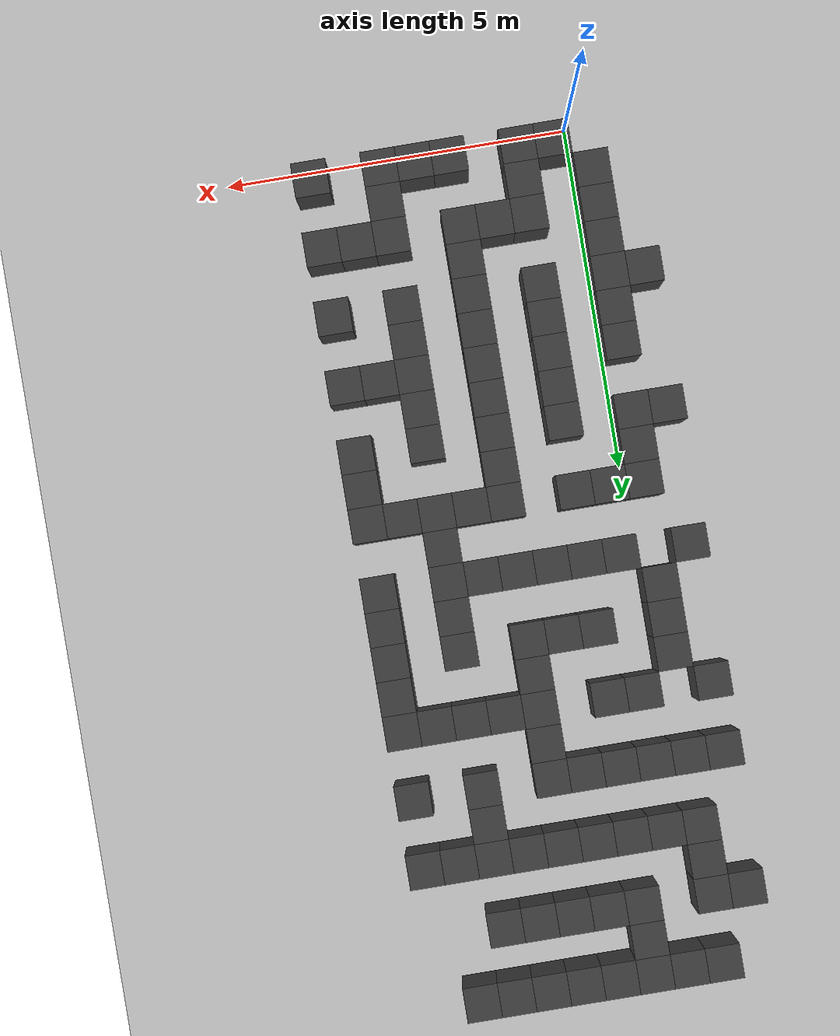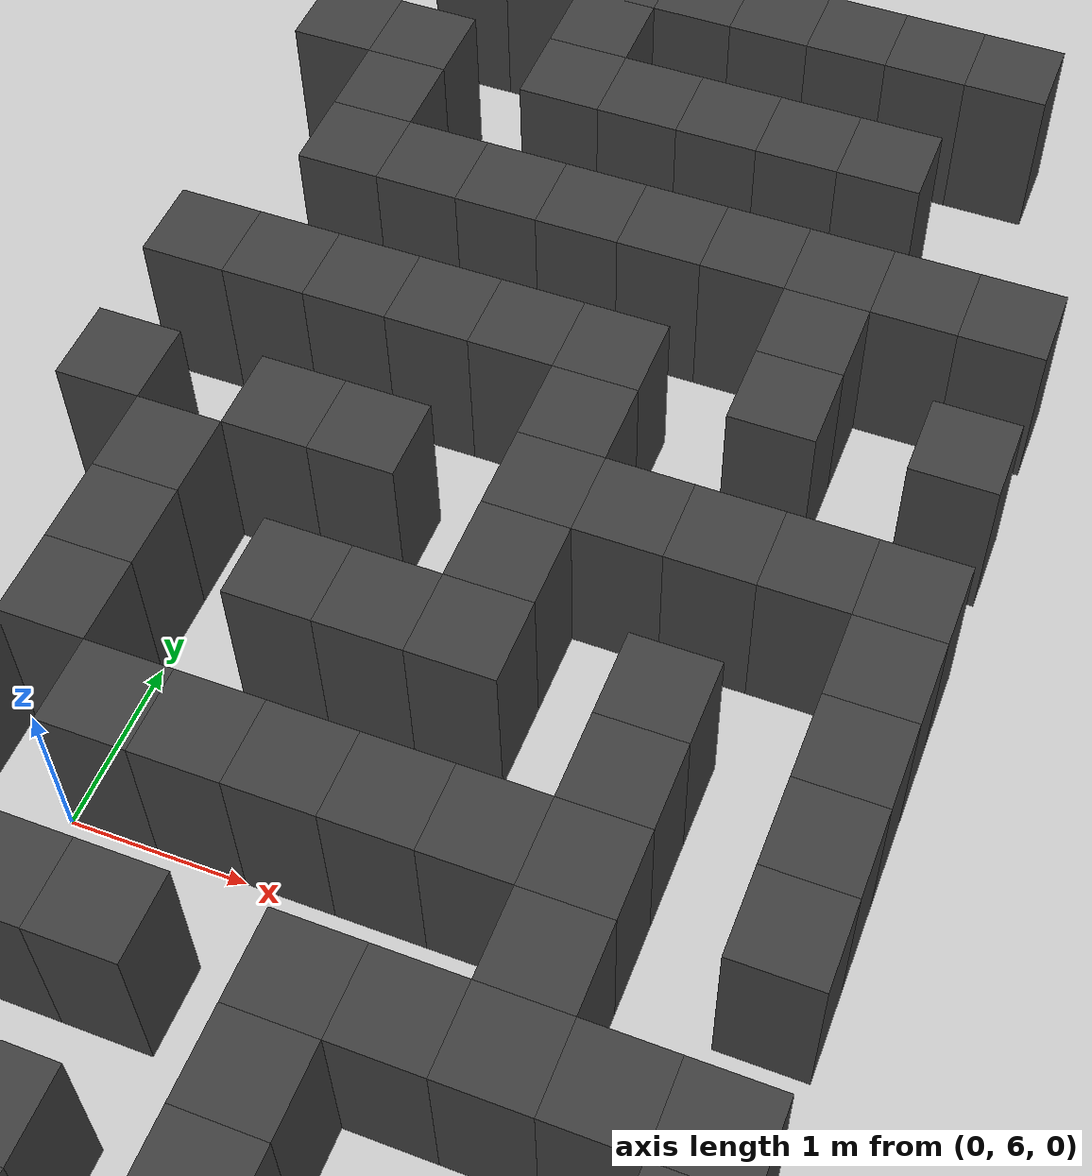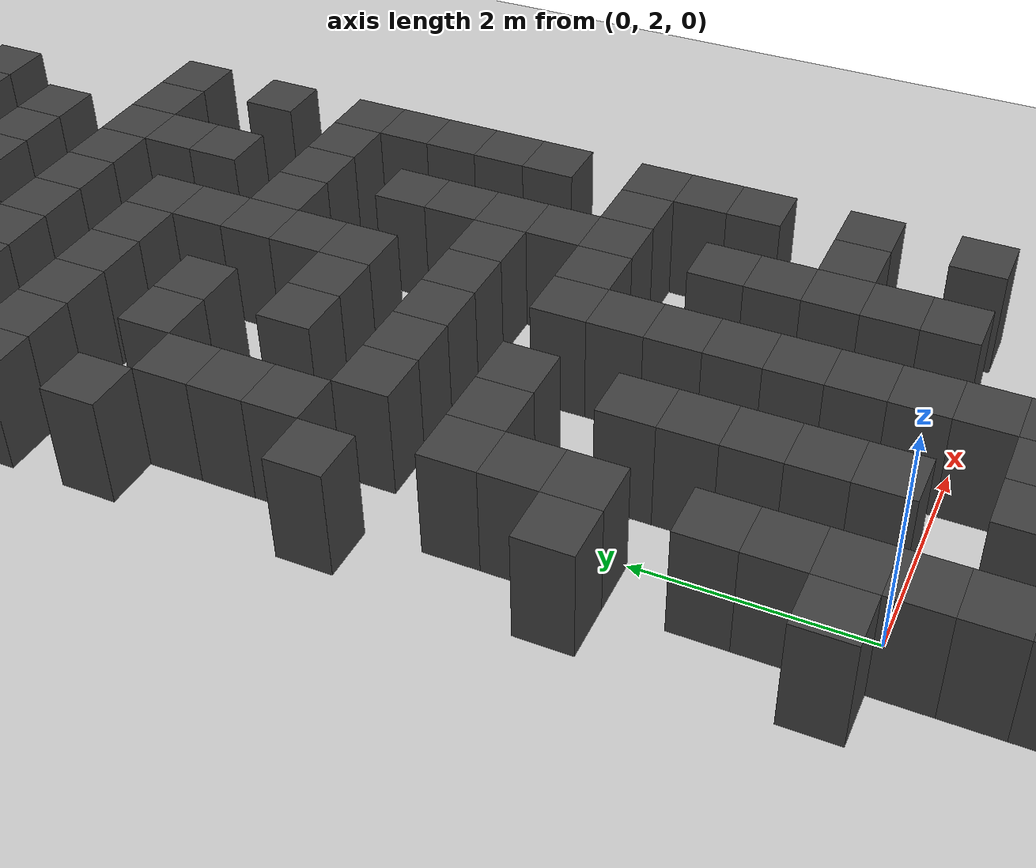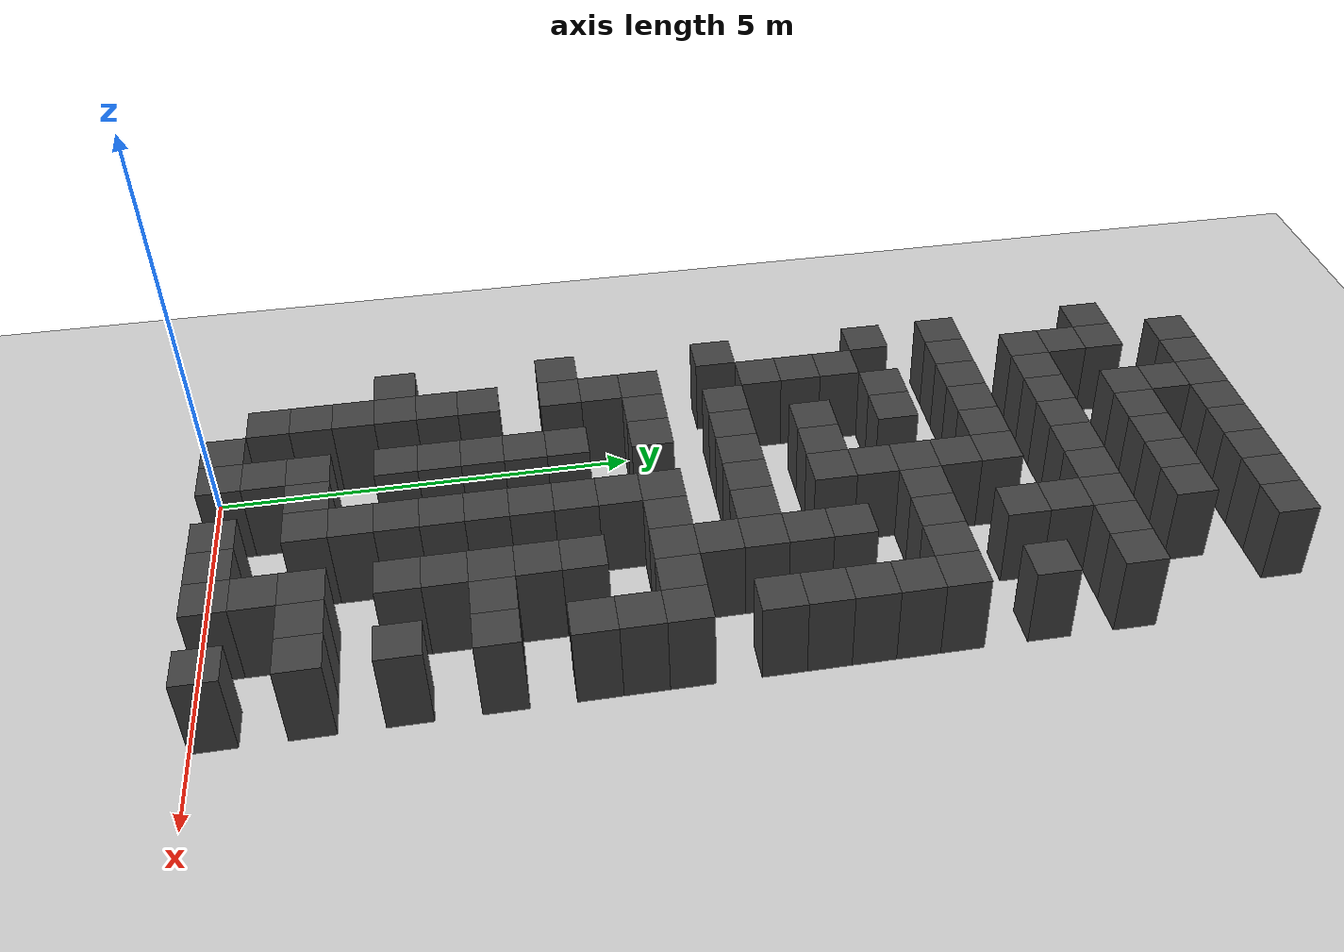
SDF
<sdf version="1.7">
 <world name="map_18814">
  <model name="ground_plane">
   <static>true</static>
   <link name="link">
    <collision name="collision">
     <geometry><plane><normal>0 0 1</normal><size>200 200</size></plane></geometry>
    </collision>
    <visual name="visual">
     <geometry><plane><normal>0 0 1</normal><size>200 200</size></plane></geometry>
     <material><ambient>0.8 0.8 0.8 1</ambient><diffuse>0.8 0.8 0.8 1</diffuse></material>
    </visual>
   </link>
  </model>
  <model name="maze_environment">
   <static>true</static>
   <link name="wall_24">
    <pose>-0.250 12.250 0.500 0 0 0</pose>
    <collision name="col"><geometry><box><size>0.5 0.5 1.0</size></box></geometry></collision>
    <visual name="vis">
     <geometry><box><size>0.5 0.5 1.0</size></box></geometry>
     <material><ambient>0.15 0.15 0.15 1</ambient><diffuse>0.25 0.25 0.25 1</diffuse></material>
    </visual>
   </link>
   <link name="wall_25">
    <pose>0.250 12.250 0.500 0 0 0</pose>
    <collision name="col"><geometry><box><size>0.5 0.5 1.0</size></box></geometry></collision>
    <visual name="vis">
     <geometry><box><size>0.5 0.5 1.0</size></box></geometry>
     <material><ambient>0.15 0.15 0.15 1</ambient><diffuse>0.25 0.25 0.25 1</diffuse></material>
    </visual>
   </link>
   <link name="wall_26">
    <pose>0.750 12.250 0.500 0 0 0</pose>
    <collision name="col"><geometry><box><size>0.5 0.5 1.0</size></box></geometry></collision>
    <visual name="vis">
     <geometry><box><size>0.5 0.5 1.0</size></box></geometry>
     <material><ambient>0.15 0.15 0.15 1</ambient><diffuse>0.25 0.25 0.25 1</diffuse></material>
    </visual>
   </link>
   <link name="wall_27">
    <pose>1.250 12.250 0.500 0 0 0</pose>
    <collision name="col"><geometry><box><size>0.5 0.5 1.0</size></box></geometry></collision>
    <visual name="vis">
     <geometry><box><size>0.5 0.5 1.0</size></box></geometry>
     <material><ambient>0.15 0.15 0.15 1</ambient><diffuse>0.25 0.25 0.25 1</diffuse></material>
    </visual>
   </link>
   <link name="wall_28">
    <pose>1.750 12.250 0.500 0 0 0</pose>
    <collision name="col"><geometry><box><size>0.5 0.5 1.0</size></box></geometry></collision>
    <visual name="vis">
     <geometry><box><size>0.5 0.5 1.0</size></box></geometry>
     <material><ambient>0.15 0.15 0.15 1</ambient><diffuse>0.25 0.25 0.25 1</diffuse></material>
    </visual>
   </link>
   <link name="wall_29">
    <pose>2.250 12.250 0.500 0 0 0</pose>
    <collision name="col"><geometry><box><size>0.5 0.5 1.0</size></box></geometry></collision>
    <visual name="vis">
     <geometry><box><size>0.5 0.5 1.0</size></box></geometry>
     <material><ambient>0.15 0.15 0.15 1</ambient><diffuse>0.25 0.25 0.25 1</diffuse></material>
    </visual>
   </link>
   <link name="wall_30">
    <pose>2.750 12.250 0.500 0 0 0</pose>
    <collision name="col"><geometry><box><size>0.5 0.5 1.0</size></box></geometry></collision>
    <visual name="vis">
     <geometry><box><size>0.5 0.5 1.0</size></box></geometry>
     <material><ambient>0.15 0.15 0.15 1</ambient><diffuse>0.25 0.25 0.25 1</diffuse></material>
    </visual>
   </link>
   <link name="wall_31">
    <pose>3.250 12.250 0.500 0 0 0</pose>
    <collision name="col"><geometry><box><size>0.5 0.5 1.0</size></box></geometry></collision>
    <visual name="vis">
     <geometry><box><size>0.5 0.5 1.0</size></box></geometry>
     <material><ambient>0.15 0.15 0.15 1</ambient><diffuse>0.25 0.25 0.25 1</diffuse></material>
    </visual>
   </link>
   <link name="wall_54">
    <pose>0.750 11.750 0.500 0 0 0</pose>
    <collision name="col"><geometry><box><size>0.5 0.5 1.0</size></box></geometry></collision>
    <visual name="vis">
     <geometry><box><size>0.5 0.5 1.0</size></box></geometry>
     <material><ambient>0.15 0.15 0.15 1</ambient><diffuse>0.25 0.25 0.25 1</diffuse></material>
    </visual>
   </link>
   <link name="wall_72">
    <pose>-0.750 11.250 0.500 0 0 0</pose>
    <collision name="col"><geometry><box><size>0.5 0.5 1.0</size></box></geometry></collision>
    <visual name="vis">
     <geometry><box><size>0.5 0.5 1.0</size></box></geometry>
     <material><ambient>0.15 0.15 0.15 1</ambient><diffuse>0.25 0.25 0.25 1</diffuse></material>
    </visual>
   </link>
   <link name="wall_73">
    <pose>-0.250 11.250 0.500 0 0 0</pose>
    <collision name="col"><geometry><box><size>0.5 0.5 1.0</size></box></geometry></collision>
    <visual name="vis">
     <geometry><box><size>0.5 0.5 1.0</size></box></geometry>
     <material><ambient>0.15 0.15 0.15 1</ambient><diffuse>0.25 0.25 0.25 1</diffuse></material>
    </visual>
   </link>
   <link name="wall_74">
    <pose>0.750 11.250 0.500 0 0 0</pose>
    <collision name="col"><geometry><box><size>0.5 0.5 1.0</size></box></geometry></collision>
    <visual name="vis">
     <geometry><box><size>0.5 0.5 1.0</size></box></geometry>
     <material><ambient>0.15 0.15 0.15 1</ambient><diffuse>0.25 0.25 0.25 1</diffuse></material>
    </visual>
   </link>
   <link name="wall_75">
    <pose>1.250 11.250 0.500 0 0 0</pose>
    <collision name="col"><geometry><box><size>0.5 0.5 1.0</size></box></geometry></collision>
    <visual name="vis">
     <geometry><box><size>0.5 0.5 1.0</size></box></geometry>
     <material><ambient>0.15 0.15 0.15 1</ambient><diffuse>0.25 0.25 0.25 1</diffuse></material>
    </visual>
   </link>
   <link name="wall_76">
    <pose>1.750 11.250 0.500 0 0 0</pose>
    <collision name="col"><geometry><box><size>0.5 0.5 1.0</size></box></geometry></collision>
    <visual name="vis">
     <geometry><box><size>0.5 0.5 1.0</size></box></geometry>
     <material><ambient>0.15 0.15 0.15 1</ambient><diffuse>0.25 0.25 0.25 1</diffuse></material>
    </visual>
   </link>
   <link name="wall_77">
    <pose>2.250 11.250 0.500 0 0 0</pose>
    <collision name="col"><geometry><box><size>0.5 0.5 1.0</size></box></geometry></collision>
    <visual name="vis">
     <geometry><box><size>0.5 0.5 1.0</size></box></geometry>
     <material><ambient>0.15 0.15 0.15 1</ambient><diffuse>0.25 0.25 0.25 1</diffuse></material>
    </visual>
   </link>
   <link name="wall_78">
    <pose>2.750 11.250 0.500 0 0 0</pose>
    <collision name="col"><geometry><box><size>0.5 0.5 1.0</size></box></geometry></collision>
    <visual name="vis">
     <geometry><box><size>0.5 0.5 1.0</size></box></geometry>
     <material><ambient>0.15 0.15 0.15 1</ambient><diffuse>0.25 0.25 0.25 1</diffuse></material>
    </visual>
   </link>
   <link name="wall_102">
    <pose>-0.250 10.750 0.500 0 0 0</pose>
    <collision name="col"><geometry><box><size>0.5 0.5 1.0</size></box></geometry></collision>
    <visual name="vis">
     <geometry><box><size>0.5 0.5 1.0</size></box></geometry>
     <material><ambient>0.15 0.15 0.15 1</ambient><diffuse>0.25 0.25 0.25 1</diffuse></material>
    </visual>
   </link>
   <link name="wall_127">
    <pose>-0.250 10.250 0.500 0 0 0</pose>
    <collision name="col"><geometry><box><size>0.5 0.5 1.0</size></box></geometry></collision>
    <visual name="vis">
     <geometry><box><size>0.5 0.5 1.0</size></box></geometry>
     <material><ambient>0.15 0.15 0.15 1</ambient><diffuse>0.25 0.25 0.25 1</diffuse></material>
    </visual>
   </link>
   <link name="wall_128">
    <pose>0.250 10.250 0.500 0 0 0</pose>
    <collision name="col"><geometry><box><size>0.5 0.5 1.0</size></box></geometry></collision>
    <visual name="vis">
     <geometry><box><size>0.5 0.5 1.0</size></box></geometry>
     <material><ambient>0.15 0.15 0.15 1</ambient><diffuse>0.25 0.25 0.25 1</diffuse></material>
    </visual>
   </link>
   <link name="wall_129">
    <pose>0.750 10.250 0.500 0 0 0</pose>
    <collision name="col"><geometry><box><size>0.5 0.5 1.0</size></box></geometry></collision>
    <visual name="vis">
     <geometry><box><size>0.5 0.5 1.0</size></box></geometry>
     <material><ambient>0.15 0.15 0.15 1</ambient><diffuse>0.25 0.25 0.25 1</diffuse></material>
    </visual>
   </link>
   <link name="wall_130">
    <pose>1.250 10.250 0.500 0 0 0</pose>
    <collision name="col"><geometry><box><size>0.5 0.5 1.0</size></box></geometry></collision>
    <visual name="vis">
     <geometry><box><size>0.5 0.5 1.0</size></box></geometry>
     <material><ambient>0.15 0.15 0.15 1</ambient><diffuse>0.25 0.25 0.25 1</diffuse></material>
    </visual>
   </link>
   <link name="wall_131">
    <pose>1.750 10.250 0.500 0 0 0</pose>
    <collision name="col"><geometry><box><size>0.5 0.5 1.0</size></box></geometry></collision>
    <visual name="vis">
     <geometry><box><size>0.5 0.5 1.0</size></box></geometry>
     <material><ambient>0.15 0.15 0.15 1</ambient><diffuse>0.25 0.25 0.25 1</diffuse></material>
    </visual>
   </link>
   <link name="wall_132">
    <pose>2.250 10.250 0.500 0 0 0</pose>
    <collision name="col"><geometry><box><size>0.5 0.5 1.0</size></box></geometry></collision>
    <visual name="vis">
     <geometry><box><size>0.5 0.5 1.0</size></box></geometry>
     <material><ambient>0.15 0.15 0.15 1</ambient><diffuse>0.25 0.25 0.25 1</diffuse></material>
    </visual>
   </link>
   <link name="wall_133">
    <pose>2.750 10.250 0.500 0 0 0</pose>
    <collision name="col"><geometry><box><size>0.5 0.5 1.0</size></box></geometry></collision>
    <visual name="vis">
     <geometry><box><size>0.5 0.5 1.0</size></box></geometry>
     <material><ambient>0.15 0.15 0.15 1</ambient><diffuse>0.25 0.25 0.25 1</diffuse></material>
    </visual>
   </link>
   <link name="wall_134">
    <pose>3.250 10.250 0.500 0 0 0</pose>
    <collision name="col"><geometry><box><size>0.5 0.5 1.0</size></box></geometry></collision>
    <visual name="vis">
     <geometry><box><size>0.5 0.5 1.0</size></box></geometry>
     <material><ambient>0.15 0.15 0.15 1</ambient><diffuse>0.25 0.25 0.25 1</diffuse></material>
    </visual>
   </link>
   <link name="wall_135">
    <pose>3.750 10.250 0.500 0 0 0</pose>
    <collision name="col"><geometry><box><size>0.5 0.5 1.0</size></box></geometry></collision>
    <visual name="vis">
     <geometry><box><size>0.5 0.5 1.0</size></box></geometry>
     <material><ambient>0.15 0.15 0.15 1</ambient><diffuse>0.25 0.25 0.25 1</diffuse></material>
    </visual>
   </link>
   <link name="wall_154">
    <pose>2.750 9.750 0.500 0 0 0</pose>
    <collision name="col"><geometry><box><size>0.5 0.5 1.0</size></box></geometry></collision>
    <visual name="vis">
     <geometry><box><size>0.5 0.5 1.0</size></box></geometry>
     <material><ambient>0.15 0.15 0.15 1</ambient><diffuse>0.25 0.25 0.25 1</diffuse></material>
    </visual>
   </link>
   <link name="wall_178">
    <pose>-0.750 9.250 0.500 0 0 0</pose>
    <collision name="col"><geometry><box><size>0.5 0.5 1.0</size></box></geometry></collision>
    <visual name="vis">
     <geometry><box><size>0.5 0.5 1.0</size></box></geometry>
     <material><ambient>0.15 0.15 0.15 1</ambient><diffuse>0.25 0.25 0.25 1</diffuse></material>
    </visual>
   </link>
   <link name="wall_179">
    <pose>-0.250 9.250 0.500 0 0 0</pose>
    <collision name="col"><geometry><box><size>0.5 0.5 1.0</size></box></geometry></collision>
    <visual name="vis">
     <geometry><box><size>0.5 0.5 1.0</size></box></geometry>
     <material><ambient>0.15 0.15 0.15 1</ambient><diffuse>0.25 0.25 0.25 1</diffuse></material>
    </visual>
   </link>
   <link name="wall_180">
    <pose>0.250 9.250 0.500 0 0 0</pose>
    <collision name="col"><geometry><box><size>0.5 0.5 1.0</size></box></geometry></collision>
    <visual name="vis">
     <geometry><box><size>0.5 0.5 1.0</size></box></geometry>
     <material><ambient>0.15 0.15 0.15 1</ambient><diffuse>0.25 0.25 0.25 1</diffuse></material>
    </visual>
   </link>
   <link name="wall_181">
    <pose>0.750 9.250 0.500 0 0 0</pose>
    <collision name="col"><geometry><box><size>0.5 0.5 1.0</size></box></geometry></collision>
    <visual name="vis">
     <geometry><box><size>0.5 0.5 1.0</size></box></geometry>
     <material><ambient>0.15 0.15 0.15 1</ambient><diffuse>0.25 0.25 0.25 1</diffuse></material>
    </visual>
   </link>
   <link name="wall_182">
    <pose>1.250 9.250 0.500 0 0 0</pose>
    <collision name="col"><geometry><box><size>0.5 0.5 1.0</size></box></geometry></collision>
    <visual name="vis">
     <geometry><box><size>0.5 0.5 1.0</size></box></geometry>
     <material><ambient>0.15 0.15 0.15 1</ambient><diffuse>0.25 0.25 0.25 1</diffuse></material>
    </visual>
   </link>
   <link name="wall_183">
    <pose>1.750 9.250 0.500 0 0 0</pose>
    <collision name="col"><geometry><box><size>0.5 0.5 1.0</size></box></geometry></collision>
    <visual name="vis">
     <geometry><box><size>0.5 0.5 1.0</size></box></geometry>
     <material><ambient>0.15 0.15 0.15 1</ambient><diffuse>0.25 0.25 0.25 1</diffuse></material>
    </visual>
   </link>
   <link name="wall_184">
    <pose>2.750 9.250 0.500 0 0 0</pose>
    <collision name="col"><geometry><box><size>0.5 0.5 1.0</size></box></geometry></collision>
    <visual name="vis">
     <geometry><box><size>0.5 0.5 1.0</size></box></geometry>
     <material><ambient>0.15 0.15 0.15 1</ambient><diffuse>0.25 0.25 0.25 1</diffuse></material>
    </visual>
   </link>
   <link name="wall_185">
    <pose>3.750 9.250 0.500 0 0 0</pose>
    <collision name="col"><geometry><box><size>0.5 0.5 1.0</size></box></geometry></collision>
    <visual name="vis">
     <geometry><box><size>0.5 0.5 1.0</size></box></geometry>
     <material><ambient>0.15 0.15 0.15 1</ambient><diffuse>0.25 0.25 0.25 1</diffuse></material>
    </visual>
   </link>
   <link name="wall_204">
    <pose>1.750 8.750 0.500 0 0 0</pose>
    <collision name="col"><geometry><box><size>0.5 0.5 1.0</size></box></geometry></collision>
    <visual name="vis">
     <geometry><box><size>0.5 0.5 1.0</size></box></geometry>
     <material><ambient>0.15 0.15 0.15 1</ambient><diffuse>0.25 0.25 0.25 1</diffuse></material>
    </visual>
   </link>
   <link name="wall_227">
    <pose>-0.750 8.250 0.500 0 0 0</pose>
    <collision name="col"><geometry><box><size>0.5 0.5 1.0</size></box></geometry></collision>
    <visual name="vis">
     <geometry><box><size>0.5 0.5 1.0</size></box></geometry>
     <material><ambient>0.15 0.15 0.15 1</ambient><diffuse>0.25 0.25 0.25 1</diffuse></material>
    </visual>
   </link>
   <link name="wall_228">
    <pose>0.250 8.250 0.500 0 0 0</pose>
    <collision name="col"><geometry><box><size>0.5 0.5 1.0</size></box></geometry></collision>
    <visual name="vis">
     <geometry><box><size>0.5 0.5 1.0</size></box></geometry>
     <material><ambient>0.15 0.15 0.15 1</ambient><diffuse>0.25 0.25 0.25 1</diffuse></material>
    </visual>
   </link>
   <link name="wall_229">
    <pose>0.750 8.250 0.500 0 0 0</pose>
    <collision name="col"><geometry><box><size>0.5 0.5 1.0</size></box></geometry></collision>
    <visual name="vis">
     <geometry><box><size>0.5 0.5 1.0</size></box></geometry>
     <material><ambient>0.15 0.15 0.15 1</ambient><diffuse>0.25 0.25 0.25 1</diffuse></material>
    </visual>
   </link>
   <link name="wall_230">
    <pose>1.750 8.250 0.500 0 0 0</pose>
    <collision name="col"><geometry><box><size>0.5 0.5 1.0</size></box></geometry></collision>
    <visual name="vis">
     <geometry><box><size>0.5 0.5 1.0</size></box></geometry>
     <material><ambient>0.15 0.15 0.15 1</ambient><diffuse>0.25 0.25 0.25 1</diffuse></material>
    </visual>
   </link>
   <link name="wall_231">
    <pose>2.250 8.250 0.500 0 0 0</pose>
    <collision name="col"><geometry><box><size>0.5 0.5 1.0</size></box></geometry></collision>
    <visual name="vis">
     <geometry><box><size>0.5 0.5 1.0</size></box></geometry>
     <material><ambient>0.15 0.15 0.15 1</ambient><diffuse>0.25 0.25 0.25 1</diffuse></material>
    </visual>
   </link>
   <link name="wall_232">
    <pose>2.750 8.250 0.500 0 0 0</pose>
    <collision name="col"><geometry><box><size>0.5 0.5 1.0</size></box></geometry></collision>
    <visual name="vis">
     <geometry><box><size>0.5 0.5 1.0</size></box></geometry>
     <material><ambient>0.15 0.15 0.15 1</ambient><diffuse>0.25 0.25 0.25 1</diffuse></material>
    </visual>
   </link>
   <link name="wall_233">
    <pose>3.250 8.250 0.500 0 0 0</pose>
    <collision name="col"><geometry><box><size>0.5 0.5 1.0</size></box></geometry></collision>
    <visual name="vis">
     <geometry><box><size>0.5 0.5 1.0</size></box></geometry>
     <material><ambient>0.15 0.15 0.15 1</ambient><diffuse>0.25 0.25 0.25 1</diffuse></material>
    </visual>
   </link>
   <link name="wall_234">
    <pose>3.750 8.250 0.500 0 0 0</pose>
    <collision name="col"><geometry><box><size>0.5 0.5 1.0</size></box></geometry></collision>
    <visual name="vis">
     <geometry><box><size>0.5 0.5 1.0</size></box></geometry>
     <material><ambient>0.15 0.15 0.15 1</ambient><diffuse>0.25 0.25 0.25 1</diffuse></material>
    </visual>
   </link>
   <link name="wall_253">
    <pose>-0.250 7.750 0.500 0 0 0</pose>
    <collision name="col"><geometry><box><size>0.5 0.5 1.0</size></box></geometry></collision>
    <visual name="vis">
     <geometry><box><size>0.5 0.5 1.0</size></box></geometry>
     <material><ambient>0.15 0.15 0.15 1</ambient><diffuse>0.25 0.25 0.25 1</diffuse></material>
    </visual>
   </link>
   <link name="wall_254">
    <pose>1.750 7.750 0.500 0 0 0</pose>
    <collision name="col"><geometry><box><size>0.5 0.5 1.0</size></box></geometry></collision>
    <visual name="vis">
     <geometry><box><size>0.5 0.5 1.0</size></box></geometry>
     <material><ambient>0.15 0.15 0.15 1</ambient><diffuse>0.25 0.25 0.25 1</diffuse></material>
    </visual>
   </link>
   <link name="wall_255">
    <pose>3.750 7.750 0.500 0 0 0</pose>
    <collision name="col"><geometry><box><size>0.5 0.5 1.0</size></box></geometry></collision>
    <visual name="vis">
     <geometry><box><size>0.5 0.5 1.0</size></box></geometry>
     <material><ambient>0.15 0.15 0.15 1</ambient><diffuse>0.25 0.25 0.25 1</diffuse></material>
    </visual>
   </link>
   <link name="wall_275">
    <pose>-0.250 7.250 0.500 0 0 0</pose>
    <collision name="col"><geometry><box><size>0.5 0.5 1.0</size></box></geometry></collision>
    <visual name="vis">
     <geometry><box><size>0.5 0.5 1.0</size></box></geometry>
     <material><ambient>0.15 0.15 0.15 1</ambient><diffuse>0.25 0.25 0.25 1</diffuse></material>
    </visual>
   </link>
   <link name="wall_276">
    <pose>0.750 7.250 0.500 0 0 0</pose>
    <collision name="col"><geometry><box><size>0.5 0.5 1.0</size></box></geometry></collision>
    <visual name="vis">
     <geometry><box><size>0.5 0.5 1.0</size></box></geometry>
     <material><ambient>0.15 0.15 0.15 1</ambient><diffuse>0.25 0.25 0.25 1</diffuse></material>
    </visual>
   </link>
   <link name="wall_277">
    <pose>1.250 7.250 0.500 0 0 0</pose>
    <collision name="col"><geometry><box><size>0.5 0.5 1.0</size></box></geometry></collision>
    <visual name="vis">
     <geometry><box><size>0.5 0.5 1.0</size></box></geometry>
     <material><ambient>0.15 0.15 0.15 1</ambient><diffuse>0.25 0.25 0.25 1</diffuse></material>
    </visual>
   </link>
   <link name="wall_278">
    <pose>1.750 7.250 0.500 0 0 0</pose>
    <collision name="col"><geometry><box><size>0.5 0.5 1.0</size></box></geometry></collision>
    <visual name="vis">
     <geometry><box><size>0.5 0.5 1.0</size></box></geometry>
     <material><ambient>0.15 0.15 0.15 1</ambient><diffuse>0.25 0.25 0.25 1</diffuse></material>
    </visual>
   </link>
   <link name="wall_279">
    <pose>2.750 7.250 0.500 0 0 0</pose>
    <collision name="col"><geometry><box><size>0.5 0.5 1.0</size></box></geometry></collision>
    <visual name="vis">
     <geometry><box><size>0.5 0.5 1.0</size></box></geometry>
     <material><ambient>0.15 0.15 0.15 1</ambient><diffuse>0.25 0.25 0.25 1</diffuse></material>
    </visual>
   </link>
   <link name="wall_280">
    <pose>3.750 7.250 0.500 0 0 0</pose>
    <collision name="col"><geometry><box><size>0.5 0.5 1.0</size></box></geometry></collision>
    <visual name="vis">
     <geometry><box><size>0.5 0.5 1.0</size></box></geometry>
     <material><ambient>0.15 0.15 0.15 1</ambient><diffuse>0.25 0.25 0.25 1</diffuse></material>
    </visual>
   </link>
   <link name="wall_299">
    <pose>-0.250 6.750 0.500 0 0 0</pose>
    <collision name="col"><geometry><box><size>0.5 0.5 1.0</size></box></geometry></collision>
    <visual name="vis">
     <geometry><box><size>0.5 0.5 1.0</size></box></geometry>
     <material><ambient>0.15 0.15 0.15 1</ambient><diffuse>0.25 0.25 0.25 1</diffuse></material>
    </visual>
   </link>
   <link name="wall_300">
    <pose>2.750 6.750 0.500 0 0 0</pose>
    <collision name="col"><geometry><box><size>0.5 0.5 1.0</size></box></geometry></collision>
    <visual name="vis">
     <geometry><box><size>0.5 0.5 1.0</size></box></geometry>
     <material><ambient>0.15 0.15 0.15 1</ambient><diffuse>0.25 0.25 0.25 1</diffuse></material>
    </visual>
   </link>
   <link name="wall_301">
    <pose>3.750 6.750 0.500 0 0 0</pose>
    <collision name="col"><geometry><box><size>0.5 0.5 1.0</size></box></geometry></collision>
    <visual name="vis">
     <geometry><box><size>0.5 0.5 1.0</size></box></geometry>
     <material><ambient>0.15 0.15 0.15 1</ambient><diffuse>0.25 0.25 0.25 1</diffuse></material>
    </visual>
   </link>
   <link name="wall_325">
    <pose>-0.750 6.250 0.500 0 0 0</pose>
    <collision name="col"><geometry><box><size>0.5 0.5 1.0</size></box></geometry></collision>
    <visual name="vis">
     <geometry><box><size>0.5 0.5 1.0</size></box></geometry>
     <material><ambient>0.15 0.15 0.15 1</ambient><diffuse>0.25 0.25 0.25 1</diffuse></material>
    </visual>
   </link>
   <link name="wall_326">
    <pose>0.250 6.250 0.500 0 0 0</pose>
    <collision name="col"><geometry><box><size>0.5 0.5 1.0</size></box></geometry></collision>
    <visual name="vis">
     <geometry><box><size>0.5 0.5 1.0</size></box></geometry>
     <material><ambient>0.15 0.15 0.15 1</ambient><diffuse>0.25 0.25 0.25 1</diffuse></material>
    </visual>
   </link>
   <link name="wall_327">
    <pose>0.750 6.250 0.500 0 0 0</pose>
    <collision name="col"><geometry><box><size>0.5 0.5 1.0</size></box></geometry></collision>
    <visual name="vis">
     <geometry><box><size>0.5 0.5 1.0</size></box></geometry>
     <material><ambient>0.15 0.15 0.15 1</ambient><diffuse>0.25 0.25 0.25 1</diffuse></material>
    </visual>
   </link>
   <link name="wall_328">
    <pose>1.250 6.250 0.500 0 0 0</pose>
    <collision name="col"><geometry><box><size>0.5 0.5 1.0</size></box></geometry></collision>
    <visual name="vis">
     <geometry><box><size>0.5 0.5 1.0</size></box></geometry>
     <material><ambient>0.15 0.15 0.15 1</ambient><diffuse>0.25 0.25 0.25 1</diffuse></material>
    </visual>
   </link>
   <link name="wall_329">
    <pose>1.750 6.250 0.500 0 0 0</pose>
    <collision name="col"><geometry><box><size>0.5 0.5 1.0</size></box></geometry></collision>
    <visual name="vis">
     <geometry><box><size>0.5 0.5 1.0</size></box></geometry>
     <material><ambient>0.15 0.15 0.15 1</ambient><diffuse>0.25 0.25 0.25 1</diffuse></material>
    </visual>
   </link>
   <link name="wall_330">
    <pose>2.250 6.250 0.500 0 0 0</pose>
    <collision name="col"><geometry><box><size>0.5 0.5 1.0</size></box></geometry></collision>
    <visual name="vis">
     <geometry><box><size>0.5 0.5 1.0</size></box></geometry>
     <material><ambient>0.15 0.15 0.15 1</ambient><diffuse>0.25 0.25 0.25 1</diffuse></material>
    </visual>
   </link>
   <link name="wall_331">
    <pose>2.750 6.250 0.500 0 0 0</pose>
    <collision name="col"><geometry><box><size>0.5 0.5 1.0</size></box></geometry></collision>
    <visual name="vis">
     <geometry><box><size>0.5 0.5 1.0</size></box></geometry>
     <material><ambient>0.15 0.15 0.15 1</ambient><diffuse>0.25 0.25 0.25 1</diffuse></material>
    </visual>
   </link>
   <link name="wall_332">
    <pose>3.750 6.250 0.500 0 0 0</pose>
    <collision name="col"><geometry><box><size>0.5 0.5 1.0</size></box></geometry></collision>
    <visual name="vis">
     <geometry><box><size>0.5 0.5 1.0</size></box></geometry>
     <material><ambient>0.15 0.15 0.15 1</ambient><diffuse>0.25 0.25 0.25 1</diffuse></material>
    </visual>
   </link>
   <link name="wall_351">
    <pose>2.750 5.750 0.500 0 0 0</pose>
    <collision name="col"><geometry><box><size>0.5 0.5 1.0</size></box></geometry></collision>
    <visual name="vis">
     <geometry><box><size>0.5 0.5 1.0</size></box></geometry>
     <material><ambient>0.15 0.15 0.15 1</ambient><diffuse>0.25 0.25 0.25 1</diffuse></material>
    </visual>
   </link>
   <link name="wall_376">
    <pose>-0.250 5.250 0.500 0 0 0</pose>
    <collision name="col"><geometry><box><size>0.5 0.5 1.0</size></box></geometry></collision>
    <visual name="vis">
     <geometry><box><size>0.5 0.5 1.0</size></box></geometry>
     <material><ambient>0.15 0.15 0.15 1</ambient><diffuse>0.25 0.25 0.25 1</diffuse></material>
    </visual>
   </link>
   <link name="wall_377">
    <pose>0.250 5.250 0.500 0 0 0</pose>
    <collision name="col"><geometry><box><size>0.5 0.5 1.0</size></box></geometry></collision>
    <visual name="vis">
     <geometry><box><size>0.5 0.5 1.0</size></box></geometry>
     <material><ambient>0.15 0.15 0.15 1</ambient><diffuse>0.25 0.25 0.25 1</diffuse></material>
    </visual>
   </link>
   <link name="wall_378">
    <pose>0.750 5.250 0.500 0 0 0</pose>
    <collision name="col"><geometry><box><size>0.5 0.5 1.0</size></box></geometry></collision>
    <visual name="vis">
     <geometry><box><size>0.5 0.5 1.0</size></box></geometry>
     <material><ambient>0.15 0.15 0.15 1</ambient><diffuse>0.25 0.25 0.25 1</diffuse></material>
    </visual>
   </link>
   <link name="wall_379">
    <pose>1.750 5.250 0.500 0 0 0</pose>
    <collision name="col"><geometry><box><size>0.5 0.5 1.0</size></box></geometry></collision>
    <visual name="vis">
     <geometry><box><size>0.5 0.5 1.0</size></box></geometry>
     <material><ambient>0.15 0.15 0.15 1</ambient><diffuse>0.25 0.25 0.25 1</diffuse></material>
    </visual>
   </link>
   <link name="wall_380">
    <pose>2.250 5.250 0.500 0 0 0</pose>
    <collision name="col"><geometry><box><size>0.5 0.5 1.0</size></box></geometry></collision>
    <visual name="vis">
     <geometry><box><size>0.5 0.5 1.0</size></box></geometry>
     <material><ambient>0.15 0.15 0.15 1</ambient><diffuse>0.25 0.25 0.25 1</diffuse></material>
    </visual>
   </link>
   <link name="wall_381">
    <pose>2.750 5.250 0.500 0 0 0</pose>
    <collision name="col"><geometry><box><size>0.5 0.5 1.0</size></box></geometry></collision>
    <visual name="vis">
     <geometry><box><size>0.5 0.5 1.0</size></box></geometry>
     <material><ambient>0.15 0.15 0.15 1</ambient><diffuse>0.25 0.25 0.25 1</diffuse></material>
    </visual>
   </link>
   <link name="wall_382">
    <pose>3.250 5.250 0.500 0 0 0</pose>
    <collision name="col"><geometry><box><size>0.5 0.5 1.0</size></box></geometry></collision>
    <visual name="vis">
     <geometry><box><size>0.5 0.5 1.0</size></box></geometry>
     <material><ambient>0.15 0.15 0.15 1</ambient><diffuse>0.25 0.25 0.25 1</diffuse></material>
    </visual>
   </link>
   <link name="wall_383">
    <pose>3.750 5.250 0.500 0 0 0</pose>
    <collision name="col"><geometry><box><size>0.5 0.5 1.0</size></box></geometry></collision>
    <visual name="vis">
     <geometry><box><size>0.5 0.5 1.0</size></box></geometry>
     <material><ambient>0.15 0.15 0.15 1</ambient><diffuse>0.25 0.25 0.25 1</diffuse></material>
    </visual>
   </link>
   <link name="wall_401">
    <pose>-0.250 4.750 0.500 0 0 0</pose>
    <collision name="col"><geometry><box><size>0.5 0.5 1.0</size></box></geometry></collision>
    <visual name="vis">
     <geometry><box><size>0.5 0.5 1.0</size></box></geometry>
     <material><ambient>0.15 0.15 0.15 1</ambient><diffuse>0.25 0.25 0.25 1</diffuse></material>
    </visual>
   </link>
   <link name="wall_402">
    <pose>1.750 4.750 0.500 0 0 0</pose>
    <collision name="col"><geometry><box><size>0.5 0.5 1.0</size></box></geometry></collision>
    <visual name="vis">
     <geometry><box><size>0.5 0.5 1.0</size></box></geometry>
     <material><ambient>0.15 0.15 0.15 1</ambient><diffuse>0.25 0.25 0.25 1</diffuse></material>
    </visual>
   </link>
   <link name="wall_403">
    <pose>3.750 4.750 0.500 0 0 0</pose>
    <collision name="col"><geometry><box><size>0.5 0.5 1.0</size></box></geometry></collision>
    <visual name="vis">
     <geometry><box><size>0.5 0.5 1.0</size></box></geometry>
     <material><ambient>0.15 0.15 0.15 1</ambient><diffuse>0.25 0.25 0.25 1</diffuse></material>
    </visual>
   </link>
   <link name="wall_428">
    <pose>-0.750 4.250 0.500 0 0 0</pose>
    <collision name="col"><geometry><box><size>0.5 0.5 1.0</size></box></geometry></collision>
    <visual name="vis">
     <geometry><box><size>0.5 0.5 1.0</size></box></geometry>
     <material><ambient>0.15 0.15 0.15 1</ambient><diffuse>0.25 0.25 0.25 1</diffuse></material>
    </visual>
   </link>
   <link name="wall_429">
    <pose>-0.250 4.250 0.500 0 0 0</pose>
    <collision name="col"><geometry><box><size>0.5 0.5 1.0</size></box></geometry></collision>
    <visual name="vis">
     <geometry><box><size>0.5 0.5 1.0</size></box></geometry>
     <material><ambient>0.15 0.15 0.15 1</ambient><diffuse>0.25 0.25 0.25 1</diffuse></material>
    </visual>
   </link>
   <link name="wall_430">
    <pose>0.750 4.250 0.500 0 0 0</pose>
    <collision name="col"><geometry><box><size>0.5 0.5 1.0</size></box></geometry></collision>
    <visual name="vis">
     <geometry><box><size>0.5 0.5 1.0</size></box></geometry>
     <material><ambient>0.15 0.15 0.15 1</ambient><diffuse>0.25 0.25 0.25 1</diffuse></material>
    </visual>
   </link>
   <link name="wall_431">
    <pose>1.750 4.250 0.500 0 0 0</pose>
    <collision name="col"><geometry><box><size>0.5 0.5 1.0</size></box></geometry></collision>
    <visual name="vis">
     <geometry><box><size>0.5 0.5 1.0</size></box></geometry>
     <material><ambient>0.15 0.15 0.15 1</ambient><diffuse>0.25 0.25 0.25 1</diffuse></material>
    </visual>
   </link>
   <link name="wall_432">
    <pose>2.750 4.250 0.500 0 0 0</pose>
    <collision name="col"><geometry><box><size>0.5 0.5 1.0</size></box></geometry></collision>
    <visual name="vis">
     <geometry><box><size>0.5 0.5 1.0</size></box></geometry>
     <material><ambient>0.15 0.15 0.15 1</ambient><diffuse>0.25 0.25 0.25 1</diffuse></material>
    </visual>
   </link>
   <link name="wall_433">
    <pose>3.750 4.250 0.500 0 0 0</pose>
    <collision name="col"><geometry><box><size>0.5 0.5 1.0</size></box></geometry></collision>
    <visual name="vis">
     <geometry><box><size>0.5 0.5 1.0</size></box></geometry>
     <material><ambient>0.15 0.15 0.15 1</ambient><diffuse>0.25 0.25 0.25 1</diffuse></material>
    </visual>
   </link>
   <link name="wall_452">
    <pose>0.750 3.750 0.500 0 0 0</pose>
    <collision name="col"><geometry><box><size>0.5 0.5 1.0</size></box></geometry></collision>
    <visual name="vis">
     <geometry><box><size>0.5 0.5 1.0</size></box></geometry>
     <material><ambient>0.15 0.15 0.15 1</ambient><diffuse>0.25 0.25 0.25 1</diffuse></material>
    </visual>
   </link>
   <link name="wall_453">
    <pose>1.750 3.750 0.500 0 0 0</pose>
    <collision name="col"><geometry><box><size>0.5 0.5 1.0</size></box></geometry></collision>
    <visual name="vis">
     <geometry><box><size>0.5 0.5 1.0</size></box></geometry>
     <material><ambient>0.15 0.15 0.15 1</ambient><diffuse>0.25 0.25 0.25 1</diffuse></material>
    </visual>
   </link>
   <link name="wall_454">
    <pose>2.750 3.750 0.500 0 0 0</pose>
    <collision name="col"><geometry><box><size>0.5 0.5 1.0</size></box></geometry></collision>
    <visual name="vis">
     <geometry><box><size>0.5 0.5 1.0</size></box></geometry>
     <material><ambient>0.15 0.15 0.15 1</ambient><diffuse>0.25 0.25 0.25 1</diffuse></material>
    </visual>
   </link>
   <link name="wall_478">
    <pose>-0.250 3.250 0.500 0 0 0</pose>
    <collision name="col"><geometry><box><size>0.5 0.5 1.0</size></box></geometry></collision>
    <visual name="vis">
     <geometry><box><size>0.5 0.5 1.0</size></box></geometry>
     <material><ambient>0.15 0.15 0.15 1</ambient><diffuse>0.25 0.25 0.25 1</diffuse></material>
    </visual>
   </link>
   <link name="wall_479">
    <pose>0.750 3.250 0.500 0 0 0</pose>
    <collision name="col"><geometry><box><size>0.5 0.5 1.0</size></box></geometry></collision>
    <visual name="vis">
     <geometry><box><size>0.5 0.5 1.0</size></box></geometry>
     <material><ambient>0.15 0.15 0.15 1</ambient><diffuse>0.25 0.25 0.25 1</diffuse></material>
    </visual>
   </link>
   <link name="wall_480">
    <pose>1.750 3.250 0.500 0 0 0</pose>
    <collision name="col"><geometry><box><size>0.5 0.5 1.0</size></box></geometry></collision>
    <visual name="vis">
     <geometry><box><size>0.5 0.5 1.0</size></box></geometry>
     <material><ambient>0.15 0.15 0.15 1</ambient><diffuse>0.25 0.25 0.25 1</diffuse></material>
    </visual>
   </link>
   <link name="wall_481">
    <pose>2.750 3.250 0.500 0 0 0</pose>
    <collision name="col"><geometry><box><size>0.5 0.5 1.0</size></box></geometry></collision>
    <visual name="vis">
     <geometry><box><size>0.5 0.5 1.0</size></box></geometry>
     <material><ambient>0.15 0.15 0.15 1</ambient><diffuse>0.25 0.25 0.25 1</diffuse></material>
    </visual>
   </link>
   <link name="wall_482">
    <pose>3.250 3.250 0.500 0 0 0</pose>
    <collision name="col"><geometry><box><size>0.5 0.5 1.0</size></box></geometry></collision>
    <visual name="vis">
     <geometry><box><size>0.5 0.5 1.0</size></box></geometry>
     <material><ambient>0.15 0.15 0.15 1</ambient><diffuse>0.25 0.25 0.25 1</diffuse></material>
    </visual>
   </link>
   <link name="wall_483">
    <pose>3.750 3.250 0.500 0 0 0</pose>
    <collision name="col"><geometry><box><size>0.5 0.5 1.0</size></box></geometry></collision>
    <visual name="vis">
     <geometry><box><size>0.5 0.5 1.0</size></box></geometry>
     <material><ambient>0.15 0.15 0.15 1</ambient><diffuse>0.25 0.25 0.25 1</diffuse></material>
    </visual>
   </link>
   <link name="wall_504">
    <pose>-0.250 2.750 0.500 0 0 0</pose>
    <collision name="col"><geometry><box><size>0.5 0.5 1.0</size></box></geometry></collision>
    <visual name="vis">
     <geometry><box><size>0.5 0.5 1.0</size></box></geometry>
     <material><ambient>0.15 0.15 0.15 1</ambient><diffuse>0.25 0.25 0.25 1</diffuse></material>
    </visual>
   </link>
   <link name="wall_505">
    <pose>0.750 2.750 0.500 0 0 0</pose>
    <collision name="col"><geometry><box><size>0.5 0.5 1.0</size></box></geometry></collision>
    <visual name="vis">
     <geometry><box><size>0.5 0.5 1.0</size></box></geometry>
     <material><ambient>0.15 0.15 0.15 1</ambient><diffuse>0.25 0.25 0.25 1</diffuse></material>
    </visual>
   </link>
   <link name="wall_506">
    <pose>1.750 2.750 0.500 0 0 0</pose>
    <collision name="col"><geometry><box><size>0.5 0.5 1.0</size></box></geometry></collision>
    <visual name="vis">
     <geometry><box><size>0.5 0.5 1.0</size></box></geometry>
     <material><ambient>0.15 0.15 0.15 1</ambient><diffuse>0.25 0.25 0.25 1</diffuse></material>
    </visual>
   </link>
   <link name="wall_507">
    <pose>2.750 2.750 0.500 0 0 0</pose>
    <collision name="col"><geometry><box><size>0.5 0.5 1.0</size></box></geometry></collision>
    <visual name="vis">
     <geometry><box><size>0.5 0.5 1.0</size></box></geometry>
     <material><ambient>0.15 0.15 0.15 1</ambient><diffuse>0.25 0.25 0.25 1</diffuse></material>
    </visual>
   </link>
   <link name="wall_528">
    <pose>-0.750 2.250 0.500 0 0 0</pose>
    <collision name="col"><geometry><box><size>0.5 0.5 1.0</size></box></geometry></collision>
    <visual name="vis">
     <geometry><box><size>0.5 0.5 1.0</size></box></geometry>
     <material><ambient>0.15 0.15 0.15 1</ambient><diffuse>0.25 0.25 0.25 1</diffuse></material>
    </visual>
   </link>
   <link name="wall_529">
    <pose>-0.250 2.250 0.500 0 0 0</pose>
    <collision name="col"><geometry><box><size>0.5 0.5 1.0</size></box></geometry></collision>
    <visual name="vis">
     <geometry><box><size>0.5 0.5 1.0</size></box></geometry>
     <material><ambient>0.15 0.15 0.15 1</ambient><diffuse>0.25 0.25 0.25 1</diffuse></material>
    </visual>
   </link>
   <link name="wall_530">
    <pose>0.750 2.250 0.500 0 0 0</pose>
    <collision name="col"><geometry><box><size>0.5 0.5 1.0</size></box></geometry></collision>
    <visual name="vis">
     <geometry><box><size>0.5 0.5 1.0</size></box></geometry>
     <material><ambient>0.15 0.15 0.15 1</ambient><diffuse>0.25 0.25 0.25 1</diffuse></material>
    </visual>
   </link>
   <link name="wall_531">
    <pose>1.750 2.250 0.500 0 0 0</pose>
    <collision name="col"><geometry><box><size>0.5 0.5 1.0</size></box></geometry></collision>
    <visual name="vis">
     <geometry><box><size>0.5 0.5 1.0</size></box></geometry>
     <material><ambient>0.15 0.15 0.15 1</ambient><diffuse>0.25 0.25 0.25 1</diffuse></material>
    </visual>
   </link>
   <link name="wall_532">
    <pose>2.750 2.250 0.500 0 0 0</pose>
    <collision name="col"><geometry><box><size>0.5 0.5 1.0</size></box></geometry></collision>
    <visual name="vis">
     <geometry><box><size>0.5 0.5 1.0</size></box></geometry>
     <material><ambient>0.15 0.15 0.15 1</ambient><diffuse>0.25 0.25 0.25 1</diffuse></material>
    </visual>
   </link>
   <link name="wall_533">
    <pose>3.750 2.250 0.500 0 0 0</pose>
    <collision name="col"><geometry><box><size>0.5 0.5 1.0</size></box></geometry></collision>
    <visual name="vis">
     <geometry><box><size>0.5 0.5 1.0</size></box></geometry>
     <material><ambient>0.15 0.15 0.15 1</ambient><diffuse>0.25 0.25 0.25 1</diffuse></material>
    </visual>
   </link>
   <link name="wall_552">
    <pose>-0.250 1.750 0.500 0 0 0</pose>
    <collision name="col"><geometry><box><size>0.5 0.5 1.0</size></box></geometry></collision>
    <visual name="vis">
     <geometry><box><size>0.5 0.5 1.0</size></box></geometry>
     <material><ambient>0.15 0.15 0.15 1</ambient><diffuse>0.25 0.25 0.25 1</diffuse></material>
    </visual>
   </link>
   <link name="wall_553">
    <pose>1.750 1.750 0.500 0 0 0</pose>
    <collision name="col"><geometry><box><size>0.5 0.5 1.0</size></box></geometry></collision>
    <visual name="vis">
     <geometry><box><size>0.5 0.5 1.0</size></box></geometry>
     <material><ambient>0.15 0.15 0.15 1</ambient><diffuse>0.25 0.25 0.25 1</diffuse></material>
    </visual>
   </link>
   <link name="wall_577">
    <pose>-0.250 1.250 0.500 0 0 0</pose>
    <collision name="col"><geometry><box><size>0.5 0.5 1.0</size></box></geometry></collision>
    <visual name="vis">
     <geometry><box><size>0.5 0.5 1.0</size></box></geometry>
     <material><ambient>0.15 0.15 0.15 1</ambient><diffuse>0.25 0.25 0.25 1</diffuse></material>
    </visual>
   </link>
   <link name="wall_578">
    <pose>0.750 1.250 0.500 0 0 0</pose>
    <collision name="col"><geometry><box><size>0.5 0.5 1.0</size></box></geometry></collision>
    <visual name="vis">
     <geometry><box><size>0.5 0.5 1.0</size></box></geometry>
     <material><ambient>0.15 0.15 0.15 1</ambient><diffuse>0.25 0.25 0.25 1</diffuse></material>
    </visual>
   </link>
   <link name="wall_579">
    <pose>1.250 1.250 0.500 0 0 0</pose>
    <collision name="col"><geometry><box><size>0.5 0.5 1.0</size></box></geometry></collision>
    <visual name="vis">
     <geometry><box><size>0.5 0.5 1.0</size></box></geometry>
     <material><ambient>0.15 0.15 0.15 1</ambient><diffuse>0.25 0.25 0.25 1</diffuse></material>
    </visual>
   </link>
   <link name="wall_580">
    <pose>1.750 1.250 0.500 0 0 0</pose>
    <collision name="col"><geometry><box><size>0.5 0.5 1.0</size></box></geometry></collision>
    <visual name="vis">
     <geometry><box><size>0.5 0.5 1.0</size></box></geometry>
     <material><ambient>0.15 0.15 0.15 1</ambient><diffuse>0.25 0.25 0.25 1</diffuse></material>
    </visual>
   </link>
   <link name="wall_581">
    <pose>2.750 1.250 0.500 0 0 0</pose>
    <collision name="col"><geometry><box><size>0.5 0.5 1.0</size></box></geometry></collision>
    <visual name="vis">
     <geometry><box><size>0.5 0.5 1.0</size></box></geometry>
     <material><ambient>0.15 0.15 0.15 1</ambient><diffuse>0.25 0.25 0.25 1</diffuse></material>
    </visual>
   </link>
   <link name="wall_582">
    <pose>3.250 1.250 0.500 0 0 0</pose>
    <collision name="col"><geometry><box><size>0.5 0.5 1.0</size></box></geometry></collision>
    <visual name="vis">
     <geometry><box><size>0.5 0.5 1.0</size></box></geometry>
     <material><ambient>0.15 0.15 0.15 1</ambient><diffuse>0.25 0.25 0.25 1</diffuse></material>
    </visual>
   </link>
   <link name="wall_583">
    <pose>3.750 1.250 0.500 0 0 0</pose>
    <collision name="col"><geometry><box><size>0.5 0.5 1.0</size></box></geometry></collision>
    <visual name="vis">
     <geometry><box><size>0.5 0.5 1.0</size></box></geometry>
     <material><ambient>0.15 0.15 0.15 1</ambient><diffuse>0.25 0.25 0.25 1</diffuse></material>
    </visual>
   </link>
   <link name="wall_603">
    <pose>-0.250 0.750 0.500 0 0 0</pose>
    <collision name="col"><geometry><box><size>0.5 0.5 1.0</size></box></geometry></collision>
    <visual name="vis">
     <geometry><box><size>0.5 0.5 1.0</size></box></geometry>
     <material><ambient>0.15 0.15 0.15 1</ambient><diffuse>0.25 0.25 0.25 1</diffuse></material>
    </visual>
   </link>
   <link name="wall_604">
    <pose>0.750 0.750 0.500 0 0 0</pose>
    <collision name="col"><geometry><box><size>0.5 0.5 1.0</size></box></geometry></collision>
    <visual name="vis">
     <geometry><box><size>0.5 0.5 1.0</size></box></geometry>
     <material><ambient>0.15 0.15 0.15 1</ambient><diffuse>0.25 0.25 0.25 1</diffuse></material>
    </visual>
   </link>
   <link name="wall_605">
    <pose>2.750 0.750 0.500 0 0 0</pose>
    <collision name="col"><geometry><box><size>0.5 0.5 1.0</size></box></geometry></collision>
    <visual name="vis">
     <geometry><box><size>0.5 0.5 1.0</size></box></geometry>
     <material><ambient>0.15 0.15 0.15 1</ambient><diffuse>0.25 0.25 0.25 1</diffuse></material>
    </visual>
   </link>
   <link name="wall_629">
    <pose>0.250 0.250 0.500 0 0 0</pose>
    <collision name="col"><geometry><box><size>0.5 0.5 1.0</size></box></geometry></collision>
    <visual name="vis">
     <geometry><box><size>0.5 0.5 1.0</size></box></geometry>
     <material><ambient>0.15 0.15 0.15 1</ambient><diffuse>0.25 0.25 0.25 1</diffuse></material>
    </visual>
   </link>
   <link name="wall_630">
    <pose>0.750 0.250 0.500 0 0 0</pose>
    <collision name="col"><geometry><box><size>0.5 0.5 1.0</size></box></geometry></collision>
    <visual name="vis">
     <geometry><box><size>0.5 0.5 1.0</size></box></geometry>
     <material><ambient>0.15 0.15 0.15 1</ambient><diffuse>0.25 0.25 0.25 1</diffuse></material>
    </visual>
   </link>
   <link name="wall_631">
    <pose>1.750 0.250 0.500 0 0 0</pose>
    <collision name="col"><geometry><box><size>0.5 0.5 1.0</size></box></geometry></collision>
    <visual name="vis">
     <geometry><box><size>0.5 0.5 1.0</size></box></geometry>
     <material><ambient>0.15 0.15 0.15 1</ambient><diffuse>0.25 0.25 0.25 1</diffuse></material>
    </visual>
   </link>
   <link name="wall_632">
    <pose>2.250 0.250 0.500 0 0 0</pose>
    <collision name="col"><geometry><box><size>0.5 0.5 1.0</size></box></geometry></collision>
    <visual name="vis">
     <geometry><box><size>0.5 0.5 1.0</size></box></geometry>
     <material><ambient>0.15 0.15 0.15 1</ambient><diffuse>0.25 0.25 0.25 1</diffuse></material>
    </visual>
   </link>
   <link name="wall_633">
    <pose>2.750 0.250 0.500 0 0 0</pose>
    <collision name="col"><geometry><box><size>0.5 0.5 1.0</size></box></geometry></collision>
    <visual name="vis">
     <geometry><box><size>0.5 0.5 1.0</size></box></geometry>
     <material><ambient>0.15 0.15 0.15 1</ambient><diffuse>0.25 0.25 0.25 1</diffuse></material>
    </visual>
   </link>
   <link name="wall_634">
    <pose>3.750 0.250 0.500 0 0 0</pose>
    <collision name="col"><geometry><box><size>0.5 0.5 1.0</size></box></geometry></collision>
    <visual name="vis">
     <geometry><box><size>0.5 0.5 1.0</size></box></geometry>
     <material><ambient>0.15 0.15 0.15 1</ambient><diffuse>0.25 0.25 0.25 1</diffuse></material>
    </visual>
   </link>
  </model>
 </world>
</sdf>
